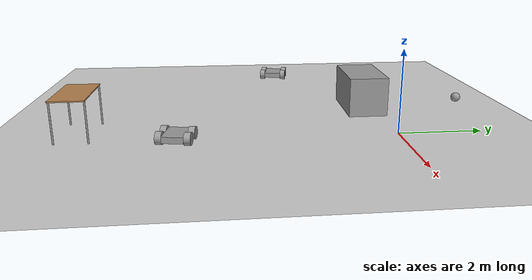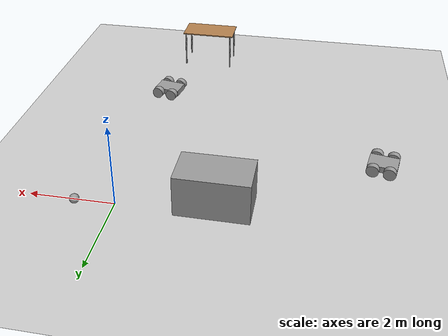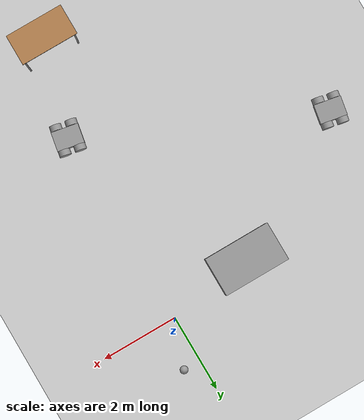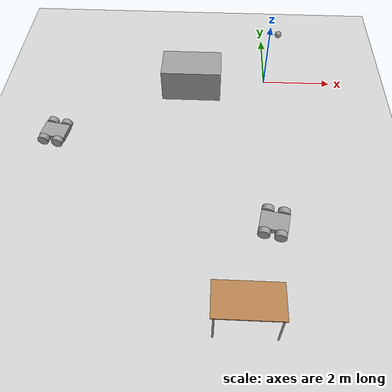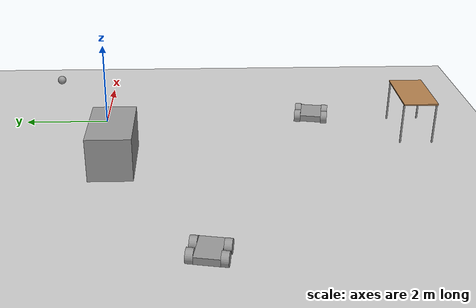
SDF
<sdf version="1.6">
 <world name="default">
  <model name="ground_plane">
   <static>1</static>
   <link name="link">
    <collision name="collision">
     <geometry><plane><normal>0 0 1</normal><size>100 100</size></plane></geometry>
     <surface><friction><ode><mu>100</mu><mu2>50</mu2></ode></friction></surface>
    </collision>
    <visual name="visual">
     <cast_shadows>0</cast_shadows>
     <geometry><plane><normal>0 0 1</normal><size>100 100</size></plane></geometry>
     <material>
      <script><uri>file://media/materials/scripts/gazebo.material</uri><name>Gazebo/Grey</name></script>
     </material>
    </visual>
   </link>
  </model>
  <model name="myrobo">
   <link name="link_0">
    <inertial>
     <mass>0.204659</mass>
     <inertia>
      <ixx>0.00778532</ixx>
      <ixy>0</ixy>
      <ixz>0</ixz>
      <iyy>0.0192244</iyy>
      <iyz>0</iyz>
      <izz>0.0226707</izz>
     </inertia>
    </inertial>
    <visual name="visual">
     <geometry><box><size>0.7 0.5 0.15</size></box></geometry>
     <material>
      <lighting>1</lighting>
      <script><uri>file://media/materials/scripts/gazebo.material</uri><name>Gazebo/Grey</name></script>
      <shader type="pixel"><normal_map>__default__</normal_map></shader>
      <ambient>0.3 0.3 0.3 1</ambient>
      <diffuse>0.7 0.7 0.7 1</diffuse>
      <specular>0.01 0.01 0.01 1</specular>
      <emissive>0 0 0 1</emissive>
     </material>
    </visual>
    <collision name="collision">
     <geometry><box><size>0.7 0.5 0.15</size></box></geometry>
     <surface>
      <friction>
       <ode><mu>1</mu><mu2>1</mu2><fdir1>0 0 0</fdir1><slip1>0</slip1><slip2>0</slip2></ode>
       <torsional>
        <coefficient>1</coefficient>
        <patch_radius>0</patch_radius>
        <surface_radius>0</surface_radius>
        <use_patch_radius>1</use_patch_radius>
        <ode><slip>0</slip></ode>
       </torsional>
      </friction>
      <bounce><restitution_coefficient>0</restitution_coefficient><threshold>1e+06</threshold></bounce>
      <contact>
       <collide_without_contact>0</collide_without_contact>
       <collide_without_contact_bitmask>1</collide_without_contact_bitmask>
       <collide_bitmask>1</collide_bitmask>
       <ode>
        <soft_cfm>0</soft_cfm>
        <soft_erp>0.2</soft_erp>
        <kp>1e+13</kp>
        <kd>1</kd>
        <max_vel>0.01</max_vel>
        <min_depth>0</min_depth>
       </ode>
       <bullet>
        <split_impulse>1</split_impulse>
        <split_impulse_penetration_threshold>-0.01</split_impulse_penetration_threshold>
        <soft_cfm>0</soft_cfm>
        <soft_erp>0.2</soft_erp>
        <kp>1e+13</kp>
        <kd>1</kd>
       </bullet>
      </contact>
     </surface>
    </collision>
   </link>
   <link name="link_1">
    <pose>0.2 -0.325014 0 1.5707 -0 0</pose>
    <inertial>
     <mass>1</mass>
     <inertia><ixx>0.145833</ixx><ixy>0</ixy><ixz>0</ixz><iyy>0.145833</iyy><iyz>0</iyz><izz>0.125</izz></inertia>
    </inertial>
    <visual name="visual">
     <geometry><cylinder><radius>0.15</radius><length>0.15</length></cylinder></geometry>
     <material>
      <lighting>1</lighting>
      <script><uri>file://media/materials/scripts/gazebo.material</uri><name>Gazebo/Grey</name></script>
      <shader type="pixel"><normal_map>__default__</normal_map></shader>
      <ambient>0.3 0.3 0.3 1</ambient>
      <diffuse>0.7 0.7 0.7 1</diffuse>
      <specular>0.01 0.01 0.01 1</specular>
      <emissive>0 0 0 1</emissive>
     </material>
    </visual>
    <collision name="collision">
     <geometry><cylinder><radius>0.15</radius><length>0.15</length></cylinder></geometry>
     <surface>
      <friction>
       <ode><mu>1</mu><mu2>1</mu2><fdir1>0 0 0</fdir1><slip1>0</slip1><slip2>0</slip2></ode>
       <torsional>
        <coefficient>1</coefficient>
        <patch_radius>0</patch_radius>
        <surface_radius>0</surface_radius>
        <use_patch_radius>1</use_patch_radius>
        <ode><slip>0</slip></ode>
       </torsional>
      </friction>
      <bounce><restitution_coefficient>0</restitution_coefficient><threshold>1e+06</threshold></bounce>
      <contact>
       <collide_without_contact>0</collide_without_contact>
       <collide_without_contact_bitmask>1</collide_without_contact_bitmask>
       <collide_bitmask>1</collide_bitmask>
       <ode>
        <soft_cfm>0</soft_cfm>
        <soft_erp>0.2</soft_erp>
        <kp>1e+13</kp>
        <kd>1</kd>
        <max_vel>0.01</max_vel>
        <min_depth>0</min_depth>
       </ode>
       <bullet>
        <split_impulse>1</split_impulse>
        <split_impulse_penetration_threshold>-0.01</split_impulse_penetration_threshold>
        <soft_cfm>0</soft_cfm>
        <soft_erp>0.2</soft_erp>
        <kp>1e+13</kp>
        <kd>1</kd>
       </bullet>
      </contact>
     </surface>
    </collision>
   </link>
   <link name="link_1_clone">
    <pose>-0.2 -0.325014 0 1.5707 -0 0</pose>
    <inertial>
     <mass>1</mass>
     <inertia><ixx>0.145833</ixx><ixy>0</ixy><ixz>0</ixz><iyy>0.145833</iyy><iyz>0</iyz><izz>0.125</izz></inertia>
    </inertial>
    <visual name="visual">
     <geometry><cylinder><radius>0.15</radius><length>0.15</length></cylinder></geometry>
     <material>
      <lighting>1</lighting>
      <script><uri>file://media/materials/scripts/gazebo.material</uri><name>Gazebo/Grey</name></script>
      <shader type="pixel"><normal_map>__default__</normal_map></shader>
      <ambient>0.3 0.3 0.3 1</ambient>
      <diffuse>0.7 0.7 0.7 1</diffuse>
      <specular>0.01 0.01 0.01 1</specular>
      <emissive>0 0 0 1</emissive>
     </material>
    </visual>
    <collision name="collision">
     <geometry><cylinder><radius>0.15</radius><length>0.15</length></cylinder></geometry>
     <surface>
      <friction>
       <ode><mu>1</mu><mu2>1</mu2><fdir1>0 0 0</fdir1><slip1>0</slip1><slip2>0</slip2></ode>
       <torsional>
        <coefficient>1</coefficient>
        <patch_radius>0</patch_radius>
        <surface_radius>0</surface_radius>
        <use_patch_radius>1</use_patch_radius>
        <ode><slip>0</slip></ode>
       </torsional>
      </friction>
      <bounce><restitution_coefficient>0</restitution_coefficient><threshold>1e+06</threshold></bounce>
      <contact>
       <collide_without_contact>0</collide_without_contact>
       <collide_without_contact_bitmask>1</collide_without_contact_bitmask>
       <collide_bitmask>1</collide_bitmask>
       <ode>
        <soft_cfm>0</soft_cfm>
        <soft_erp>0.2</soft_erp>
        <kp>1e+13</kp>
        <kd>1</kd>
        <max_vel>0.01</max_vel>
        <min_depth>0</min_depth>
       </ode>
       <bullet>
        <split_impulse>1</split_impulse>
        <split_impulse_penetration_threshold>-0.01</split_impulse_penetration_threshold>
        <soft_cfm>0</soft_cfm>
        <soft_erp>0.2</soft_erp>
        <kp>1e+13</kp>
        <kd>1</kd>
       </bullet>
      </contact>
     </surface>
    </collision>
   </link>
   <link name="link_1_clone_0">
    <pose>-0.2 0.325014 0 1.5707 -0 0</pose>
    <inertial>
     <mass>1</mass>
     <inertia><ixx>0.145833</ixx><ixy>0</ixy><ixz>0</ixz><iyy>0.145833</iyy><iyz>0</iyz><izz>0.125</izz></inertia>
    </inertial>
    <visual name="visual">
     <geometry><cylinder><radius>0.15</radius><length>0.15</length></cylinder></geometry>
     <material>
      <lighting>1</lighting>
      <script><uri>file://media/materials/scripts/gazebo.material</uri><name>Gazebo/Grey</name></script>
      <shader type="pixel"><normal_map>__default__</normal_map></shader>
      <ambient>0.3 0.3 0.3 1</ambient>
      <diffuse>0.7 0.7 0.7 1</diffuse>
      <specular>0.01 0.01 0.01 1</specular>
      <emissive>0 0 0 1</emissive>
     </material>
    </visual>
    <collision name="collision">
     <geometry><cylinder><radius>0.15</radius><length>0.15</length></cylinder></geometry>
     <surface>
      <friction>
       <ode><mu>1</mu><mu2>1</mu2><fdir1>0 0 0</fdir1><slip1>0</slip1><slip2>0</slip2></ode>
       <torsional>
        <coefficient>1</coefficient>
        <patch_radius>0</patch_radius>
        <surface_radius>0</surface_radius>
        <use_patch_radius>1</use_patch_radius>
        <ode><slip>0</slip></ode>
       </torsional>
      </friction>
      <bounce><restitution_coefficient>0</restitution_coefficient><threshold>1e+06</threshold></bounce>
      <contact>
       <collide_without_contact>0</collide_without_contact>
       <collide_without_contact_bitmask>1</collide_without_contact_bitmask>
       <collide_bitmask>1</collide_bitmask>
       <ode>
        <soft_cfm>0</soft_cfm>
        <soft_erp>0.2</soft_erp>
        <kp>1e+13</kp>
        <kd>1</kd>
        <max_vel>0.01</max_vel>
        <min_depth>0</min_depth>
       </ode>
       <bullet>
        <split_impulse>1</split_impulse>
        <split_impulse_penetration_threshold>-0.01</split_impulse_penetration_threshold>
        <soft_cfm>0</soft_cfm>
        <soft_erp>0.2</soft_erp>
        <kp>1e+13</kp>
        <kd>1</kd>
       </bullet>
      </contact>
     </surface>
    </collision>
   </link>
   <link name="link_1_clone_1">
    <pose>0.2 0.325014 0 1.5707 -0 0</pose>
    <inertial>
     <mass>1</mass>
     <inertia><ixx>0.145833</ixx><ixy>0</ixy><ixz>0</ixz><iyy>0.145833</iyy><iyz>0</iyz><izz>0.125</izz></inertia>
    </inertial>
    <visual name="visual">
     <geometry><cylinder><radius>0.15</radius><length>0.15</length></cylinder></geometry>
     <material>
      <lighting>1</lighting>
      <script><uri>file://media/materials/scripts/gazebo.material</uri><name>Gazebo/Grey</name></script>
      <shader type="pixel"><normal_map>__default__</normal_map></shader>
      <ambient>0.3 0.3 0.3 1</ambient>
      <diffuse>0.7 0.7 0.7 1</diffuse>
      <specular>0.01 0.01 0.01 1</specular>
      <emissive>0 0 0 1</emissive>
     </material>
    </visual>
    <collision name="collision">
     <geometry><cylinder><radius>0.15</radius><length>0.15</length></cylinder></geometry>
     <surface>
      <friction>
       <ode><mu>1</mu><mu2>1</mu2><fdir1>0 0 0</fdir1><slip1>0</slip1><slip2>0</slip2></ode>
       <torsional>
        <coefficient>1</coefficient>
        <patch_radius>0</patch_radius>
        <surface_radius>0</surface_radius>
        <use_patch_radius>1</use_patch_radius>
        <ode><slip>0</slip></ode>
       </torsional>
      </friction>
      <bounce><restitution_coefficient>0</restitution_coefficient><threshold>1e+06</threshold></bounce>
      <contact>
       <collide_without_contact>0</collide_without_contact>
       <collide_without_contact_bitmask>1</collide_without_contact_bitmask>
       <collide_bitmask>1</collide_bitmask>
       <ode>
        <soft_cfm>0</soft_cfm>
        <soft_erp>0.2</soft_erp>
        <kp>1e+13</kp>
        <kd>1</kd>
        <max_vel>0.01</max_vel>
        <min_depth>0</min_depth>
       </ode>
       <bullet>
        <split_impulse>1</split_impulse>
        <split_impulse_penetration_threshold>-0.01</split_impulse_penetration_threshold>
        <soft_cfm>0</soft_cfm>
        <soft_erp>0.2</soft_erp>
        <kp>1e+13</kp>
        <kd>1</kd>
       </bullet>
      </contact>
     </surface>
    </collision>
   </link>
   <joint name="link_0_JOINT_1" type="revolute">
    <parent>link_0</parent>
    <child>link_1</child>
    <axis>
     <xyz>1 0 0</xyz>
     <use_parent_model_frame>0</use_parent_model_frame>
     <limit>
      <lower>-1.79769e+308</lower>
      <upper>1.79769e+308</upper>
      <effort>-1</effort>
      <velocity>-1</velocity>
     </limit>
     <dynamics>
      <spring_reference>0</spring_reference>
      <spring_stiffness>0</spring_stiffness>
      <damping>0</damping>
     </dynamics>
    </axis>
    <physics>
     <ode><limit><cfm>0</cfm><erp>0.2</erp></limit><suspension><cfm>0</cfm><erp>0.2</erp></suspension></ode>
    </physics>
   </joint>
   <joint name="link_0_JOINT_2" type="revolute">
    <parent>link_0</parent>
    <child>link_1_clone_1</child>
    <pose>0 0 0.3 0 -0 0</pose>
    <axis>
     <xyz>0 0 1</xyz>
     <use_parent_model_frame>0</use_parent_model_frame>
     <limit>
      <lower>-1.79769e+308</lower>
      <upper>1.79769e+308</upper>
      <effort>-1</effort>
      <velocity>-1</velocity>
     </limit>
     <dynamics>
      <spring_reference>0</spring_reference>
      <spring_stiffness>0</spring_stiffness>
      <damping>0</damping>
      <friction>0</friction>
     </dynamics>
    </axis>
    <physics>
     <ode><limit><cfm>0</cfm><erp>0.2</erp></limit><suspension><cfm>0</cfm><erp>0.2</erp></suspension></ode>
    </physics>
   </joint>
   <joint name="link_0_JOINT_3" type="revolute">
    <parent>link_0</parent>
    <child>link_1_clone</child>
    <axis>
     <xyz>1 0 0</xyz>
     <use_parent_model_frame>0</use_parent_model_frame>
     <limit>
      <lower>-1.79769e+308</lower>
      <upper>1.79769e+308</upper>
      <effort>-1</effort>
      <velocity>-1</velocity>
     </limit>
     <dynamics>
      <spring_reference>0</spring_reference>
      <spring_stiffness>0</spring_stiffness>
      <damping>0</damping>
     </dynamics>
    </axis>
    <physics>
     <ode><limit><cfm>0</cfm><erp>0.2</erp></limit><suspension><cfm>0</cfm><erp>0.2</erp></suspension></ode>
    </physics>
   </joint>
   <joint name="link_0_JOINT_4" type="revolute">
    <parent>link_0</parent>
    <child>link_1_clone_0</child>
    <axis>
     <xyz>1 0 0</xyz>
     <use_parent_model_frame>0</use_parent_model_frame>
     <limit>
      <lower>-1.79769e+308</lower>
      <upper>1.79769e+308</upper>
      <effort>-1</effort>
      <velocity>-1</velocity>
     </limit>
     <dynamics>
      <spring_reference>0</spring_reference>
      <spring_stiffness>0</spring_stiffness>
      <damping>0</damping>
     </dynamics>
    </axis>
    <physics>
     <ode><limit><cfm>0</cfm><erp>0.2</erp></limit><suspension><cfm>0</cfm><erp>0.2</erp></suspension></ode>
    </physics>
   </joint>
   <static>0</static>
   <pose>0.026232 -5.13325 0.149999 4e-06 -4e-06 -0.18179</pose>
  </model>
  <model name="myrobo_0">
   <link name="link_0">
    <inertial>
     <mass>0.204659</mass>
     <inertia>
      <ixx>0.00778532</ixx>
      <ixy>0</ixy>
      <ixz>0</ixz>
      <iyy>0.0192244</iyy>
      <iyz>0</iyz>
      <izz>0.0226707</izz>
     </inertia>
    </inertial>
    <visual name="visual">
     <geometry><box><size>0.7 0.5 0.15</size></box></geometry>
     <material>
      <lighting>1</lighting>
      <script><uri>file://media/materials/scripts/gazebo.material</uri><name>Gazebo/Grey</name></script>
      <shader type="pixel"><normal_map>__default__</normal_map></shader>
      <ambient>0.3 0.3 0.3 1</ambient>
      <diffuse>0.7 0.7 0.7 1</diffuse>
      <specular>0.01 0.01 0.01 1</specular>
      <emissive>0 0 0 1</emissive>
     </material>
    </visual>
    <collision name="collision">
     <geometry><box><size>0.7 0.5 0.15</size></box></geometry>
     <surface>
      <friction>
       <ode><mu>1</mu><mu2>1</mu2><fdir1>0 0 0</fdir1><slip1>0</slip1><slip2>0</slip2></ode>
       <torsional>
        <coefficient>1</coefficient>
        <patch_radius>0</patch_radius>
        <surface_radius>0</surface_radius>
        <use_patch_radius>1</use_patch_radius>
        <ode><slip>0</slip></ode>
       </torsional>
      </friction>
      <bounce><restitution_coefficient>0</restitution_coefficient><threshold>1e+06</threshold></bounce>
      <contact>
       <collide_without_contact>0</collide_without_contact>
       <collide_without_contact_bitmask>1</collide_without_contact_bitmask>
       <collide_bitmask>1</collide_bitmask>
       <ode>
        <soft_cfm>0</soft_cfm>
        <soft_erp>0.2</soft_erp>
        <kp>1e+13</kp>
        <kd>1</kd>
        <max_vel>0.01</max_vel>
        <min_depth>0</min_depth>
       </ode>
       <bullet>
        <split_impulse>1</split_impulse>
        <split_impulse_penetration_threshold>-0.01</split_impulse_penetration_threshold>
        <soft_cfm>0</soft_cfm>
        <soft_erp>0.2</soft_erp>
        <kp>1e+13</kp>
        <kd>1</kd>
       </bullet>
      </contact>
     </surface>
    </collision>
   </link>
   <link name="link_1">
    <pose>0.2 -0.325014 0 1.5707 -0 0</pose>
    <inertial>
     <mass>1</mass>
     <inertia><ixx>0.145833</ixx><ixy>0</ixy><ixz>0</ixz><iyy>0.145833</iyy><iyz>0</iyz><izz>0.125</izz></inertia>
    </inertial>
    <visual name="visual">
     <geometry><cylinder><radius>0.15</radius><length>0.15</length></cylinder></geometry>
     <material>
      <lighting>1</lighting>
      <script><uri>file://media/materials/scripts/gazebo.material</uri><name>Gazebo/Grey</name></script>
      <shader type="pixel"><normal_map>__default__</normal_map></shader>
      <ambient>0.3 0.3 0.3 1</ambient>
      <diffuse>0.7 0.7 0.7 1</diffuse>
      <specular>0.01 0.01 0.01 1</specular>
      <emissive>0 0 0 1</emissive>
     </material>
    </visual>
    <collision name="collision">
     <geometry><cylinder><radius>0.15</radius><length>0.15</length></cylinder></geometry>
     <surface>
      <friction>
       <ode><mu>1</mu><mu2>1</mu2><fdir1>0 0 0</fdir1><slip1>0</slip1><slip2>0</slip2></ode>
       <torsional>
        <coefficient>1</coefficient>
        <patch_radius>0</patch_radius>
        <surface_radius>0</surface_radius>
        <use_patch_radius>1</use_patch_radius>
        <ode><slip>0</slip></ode>
       </torsional>
      </friction>
      <bounce><restitution_coefficient>0</restitution_coefficient><threshold>1e+06</threshold></bounce>
      <contact>
       <collide_without_contact>0</collide_without_contact>
       <collide_without_contact_bitmask>1</collide_without_contact_bitmask>
       <collide_bitmask>1</collide_bitmask>
       <ode>
        <soft_cfm>0</soft_cfm>
        <soft_erp>0.2</soft_erp>
        <kp>1e+13</kp>
        <kd>1</kd>
        <max_vel>0.01</max_vel>
        <min_depth>0</min_depth>
       </ode>
       <bullet>
        <split_impulse>1</split_impulse>
        <split_impulse_penetration_threshold>-0.01</split_impulse_penetration_threshold>
        <soft_cfm>0</soft_cfm>
        <soft_erp>0.2</soft_erp>
        <kp>1e+13</kp>
        <kd>1</kd>
       </bullet>
      </contact>
     </surface>
    </collision>
   </link>
   <link name="link_1_clone">
    <pose>-0.2 -0.325014 0 1.5707 -0 0</pose>
    <inertial>
     <mass>1</mass>
     <inertia><ixx>0.145833</ixx><ixy>0</ixy><ixz>0</ixz><iyy>0.145833</iyy><iyz>0</iyz><izz>0.125</izz></inertia>
    </inertial>
    <visual name="visual">
     <geometry><cylinder><radius>0.15</radius><length>0.15</length></cylinder></geometry>
     <material>
      <lighting>1</lighting>
      <script><uri>file://media/materials/scripts/gazebo.material</uri><name>Gazebo/Grey</name></script>
      <shader type="pixel"><normal_map>__default__</normal_map></shader>
      <ambient>0.3 0.3 0.3 1</ambient>
      <diffuse>0.7 0.7 0.7 1</diffuse>
      <specular>0.01 0.01 0.01 1</specular>
      <emissive>0 0 0 1</emissive>
     </material>
    </visual>
    <collision name="collision">
     <geometry><cylinder><radius>0.15</radius><length>0.15</length></cylinder></geometry>
     <surface>
      <friction>
       <ode><mu>1</mu><mu2>1</mu2><fdir1>0 0 0</fdir1><slip1>0</slip1><slip2>0</slip2></ode>
       <torsional>
        <coefficient>1</coefficient>
        <patch_radius>0</patch_radius>
        <surface_radius>0</surface_radius>
        <use_patch_radius>1</use_patch_radius>
        <ode><slip>0</slip></ode>
       </torsional>
      </friction>
      <bounce><restitution_coefficient>0</restitution_coefficient><threshold>1e+06</threshold></bounce>
      <contact>
       <collide_without_contact>0</collide_without_contact>
       <collide_without_contact_bitmask>1</collide_without_contact_bitmask>
       <collide_bitmask>1</collide_bitmask>
       <ode>
        <soft_cfm>0</soft_cfm>
        <soft_erp>0.2</soft_erp>
        <kp>1e+13</kp>
        <kd>1</kd>
        <max_vel>0.01</max_vel>
        <min_depth>0</min_depth>
       </ode>
       <bullet>
        <split_impulse>1</split_impulse>
        <split_impulse_penetration_threshold>-0.01</split_impulse_penetration_threshold>
        <soft_cfm>0</soft_cfm>
        <soft_erp>0.2</soft_erp>
        <kp>1e+13</kp>
        <kd>1</kd>
       </bullet>
      </contact>
     </surface>
    </collision>
   </link>
   <link name="link_1_clone_0">
    <pose>-0.2 0.325014 0 1.5707 -0 0</pose>
    <inertial>
     <mass>1</mass>
     <inertia><ixx>0.145833</ixx><ixy>0</ixy><ixz>0</ixz><iyy>0.145833</iyy><iyz>0</iyz><izz>0.125</izz></inertia>
    </inertial>
    <visual name="visual">
     <geometry><cylinder><radius>0.15</radius><length>0.15</length></cylinder></geometry>
     <material>
      <lighting>1</lighting>
      <script><uri>file://media/materials/scripts/gazebo.material</uri><name>Gazebo/Grey</name></script>
      <shader type="pixel"><normal_map>__default__</normal_map></shader>
      <ambient>0.3 0.3 0.3 1</ambient>
      <diffuse>0.7 0.7 0.7 1</diffuse>
      <specular>0.01 0.01 0.01 1</specular>
      <emissive>0 0 0 1</emissive>
     </material>
    </visual>
    <collision name="collision">
     <geometry><cylinder><radius>0.15</radius><length>0.15</length></cylinder></geometry>
     <surface>
      <friction>
       <ode><mu>1</mu><mu2>1</mu2><fdir1>0 0 0</fdir1><slip1>0</slip1><slip2>0</slip2></ode>
       <torsional>
        <coefficient>1</coefficient>
        <patch_radius>0</patch_radius>
        <surface_radius>0</surface_radius>
        <use_patch_radius>1</use_patch_radius>
        <ode><slip>0</slip></ode>
       </torsional>
      </friction>
      <bounce><restitution_coefficient>0</restitution_coefficient><threshold>1e+06</threshold></bounce>
      <contact>
       <collide_without_contact>0</collide_without_contact>
       <collide_without_contact_bitmask>1</collide_without_contact_bitmask>
       <collide_bitmask>1</collide_bitmask>
       <ode>
        <soft_cfm>0</soft_cfm>
        <soft_erp>0.2</soft_erp>
        <kp>1e+13</kp>
        <kd>1</kd>
        <max_vel>0.01</max_vel>
        <min_depth>0</min_depth>
       </ode>
       <bullet>
        <split_impulse>1</split_impulse>
        <split_impulse_penetration_threshold>-0.01</split_impulse_penetration_threshold>
        <soft_cfm>0</soft_cfm>
        <soft_erp>0.2</soft_erp>
        <kp>1e+13</kp>
        <kd>1</kd>
       </bullet>
      </contact>
     </surface>
    </collision>
   </link>
   <link name="link_1_clone_1">
    <pose>0.2 0.325014 0 1.5707 -0 0</pose>
    <inertial>
     <mass>1</mass>
     <inertia><ixx>0.145833</ixx><ixy>0</ixy><ixz>0</ixz><iyy>0.145833</iyy><iyz>0</iyz><izz>0.125</izz></inertia>
    </inertial>
    <visual name="visual">
     <geometry><cylinder><radius>0.15</radius><length>0.15</length></cylinder></geometry>
     <material>
      <lighting>1</lighting>
      <script><uri>file://media/materials/scripts/gazebo.material</uri><name>Gazebo/Grey</name></script>
      <shader type="pixel"><normal_map>__default__</normal_map></shader>
      <ambient>0.3 0.3 0.3 1</ambient>
      <diffuse>0.7 0.7 0.7 1</diffuse>
      <specular>0.01 0.01 0.01 1</specular>
      <emissive>0 0 0 1</emissive>
     </material>
    </visual>
    <collision name="collision">
     <geometry><cylinder><radius>0.15</radius><length>0.15</length></cylinder></geometry>
     <surface>
      <friction>
       <ode><mu>1</mu><mu2>1</mu2><fdir1>0 0 0</fdir1><slip1>0</slip1><slip2>0</slip2></ode>
       <torsional>
        <coefficient>1</coefficient>
        <patch_radius>0</patch_radius>
        <surface_radius>0</surface_radius>
        <use_patch_radius>1</use_patch_radius>
        <ode><slip>0</slip></ode>
       </torsional>
      </friction>
      <bounce><restitution_coefficient>0</restitution_coefficient><threshold>1e+06</threshold></bounce>
      <contact>
       <collide_without_contact>0</collide_without_contact>
       <collide_without_contact_bitmask>1</collide_without_contact_bitmask>
       <collide_bitmask>1</collide_bitmask>
       <ode>
        <soft_cfm>0</soft_cfm>
        <soft_erp>0.2</soft_erp>
        <kp>1e+13</kp>
        <kd>1</kd>
        <max_vel>0.01</max_vel>
        <min_depth>0</min_depth>
       </ode>
       <bullet>
        <split_impulse>1</split_impulse>
        <split_impulse_penetration_threshold>-0.01</split_impulse_penetration_threshold>
        <soft_cfm>0</soft_cfm>
        <soft_erp>0.2</soft_erp>
        <kp>1e+13</kp>
        <kd>1</kd>
       </bullet>
      </contact>
     </surface>
    </collision>
   </link>
   <joint name="link_0_JOINT_1" type="revolute">
    <parent>link_0</parent>
    <child>link_1</child>
    <axis>
     <xyz>1 0 0</xyz>
     <use_parent_model_frame>0</use_parent_model_frame>
     <limit>
      <lower>-1.79769e+308</lower>
      <upper>1.79769e+308</upper>
      <effort>-1</effort>
      <velocity>-1</velocity>
     </limit>
     <dynamics>
      <spring_reference>0</spring_reference>
      <spring_stiffness>0</spring_stiffness>
      <damping>0</damping>
     </dynamics>
    </axis>
    <physics>
     <ode><limit><cfm>0</cfm><erp>0.2</erp></limit><suspension><cfm>0</cfm><erp>0.2</erp></suspension></ode>
    </physics>
   </joint>
   <joint name="link_0_JOINT_2" type="revolute">
    <parent>link_0</parent>
    <child>link_1_clone_1</child>
    <pose>0 0 0.3 0 -0 0</pose>
    <axis>
     <xyz>0 0 1</xyz>
     <use_parent_model_frame>0</use_parent_model_frame>
     <limit>
      <lower>-1.79769e+308</lower>
      <upper>1.79769e+308</upper>
      <effort>-1</effort>
      <velocity>-1</velocity>
     </limit>
     <dynamics>
      <spring_reference>0</spring_reference>
      <spring_stiffness>0</spring_stiffness>
      <damping>0</damping>
      <friction>0</friction>
     </dynamics>
    </axis>
    <physics>
     <ode><limit><cfm>0</cfm><erp>0.2</erp></limit><suspension><cfm>0</cfm><erp>0.2</erp></suspension></ode>
    </physics>
   </joint>
   <joint name="link_0_JOINT_3" type="revolute">
    <parent>link_0</parent>
    <child>link_1_clone</child>
    <axis>
     <xyz>1 0 0</xyz>
     <use_parent_model_frame>0</use_parent_model_frame>
     <limit>
      <lower>-1.79769e+308</lower>
      <upper>1.79769e+308</upper>
      <effort>-1</effort>
      <velocity>-1</velocity>
     </limit>
     <dynamics>
      <spring_reference>0</spring_reference>
      <spring_stiffness>0</spring_stiffness>
      <damping>0</damping>
     </dynamics>
    </axis>
    <physics>
     <ode><limit><cfm>0</cfm><erp>0.2</erp></limit><suspension><cfm>0</cfm><erp>0.2</erp></suspension></ode>
    </physics>
   </joint>
   <joint name="link_0_JOINT_4" type="revolute">
    <parent>link_0</parent>
    <child>link_1_clone_0</child>
    <axis>
     <xyz>1 0 0</xyz>
     <use_parent_model_frame>0</use_parent_model_frame>
     <limit>
      <lower>-1.79769e+308</lower>
      <upper>1.79769e+308</upper>
      <effort>-1</effort>
      <velocity>-1</velocity>
     </limit>
     <dynamics>
      <spring_reference>0</spring_reference>
      <spring_stiffness>0</spring_stiffness>
      <damping>0</damping>
     </dynamics>
    </axis>
    <physics>
     <ode><limit><cfm>0</cfm><erp>0.2</erp></limit><suspension><cfm>0</cfm><erp>0.2</erp></suspension></ode>
    </physics>
   </joint>
   <static>0</static>
   <pose>-5.87225 -2.44596 0.15 1e-05 -1e-05 -0.180553</pose>
  </model>
  <model name="table">
   <static>1</static>
   <link name="link">
    <collision name="surface">
     <pose>0 0 1 0 -0 0</pose>
     <geometry><box><size>1.5 0.8 0.03</size></box></geometry>
     <surface><friction><ode><mu>0.6</mu><mu2>0.6</mu2></ode></friction></surface>
    </collision>
    <visual name="visual1">
     <pose>0 0 1 0 -0 0</pose>
     <geometry><box><size>1.5 0.8 0.03</size></box></geometry>
     <material>
      <script><uri>file://media/materials/scripts/gazebo.material</uri><name>Gazebo/Wood</name></script>
     </material>
    </visual>
    <collision name="front_left_leg">
     <pose>0.68 0.38 0.5 0 -0 0</pose>
     <geometry><cylinder><radius>0.02</radius><length>1</length></cylinder></geometry>
    </collision>
    <visual name="front_left_leg">
     <pose>0.68 0.38 0.5 0 -0 0</pose>
     <geometry><cylinder><radius>0.02</radius><length>1</length></cylinder></geometry>
     <material>
      <script><uri>file://media/materials/scripts/gazebo.material</uri><name>Gazebo/Grey</name></script>
     </material>
    </visual>
    <collision name="front_right_leg">
     <pose>0.68 -0.38 0.5 0 -0 0</pose>
     <geometry><cylinder><radius>0.02</radius><length>1</length></cylinder></geometry>
    </collision>
    <visual name="front_right_leg">
     <pose>0.68 -0.38 0.5 0 -0 0</pose>
     <geometry><cylinder><radius>0.02</radius><length>1</length></cylinder></geometry>
     <material>
      <script><uri>file://media/materials/scripts/gazebo.material</uri><name>Gazebo/Grey</name></script>
     </material>
    </visual>
    <collision name="back_right_leg">
     <pose>-0.68 -0.38 0.5 0 -0 0</pose>
     <geometry><cylinder><radius>0.02</radius><length>1</length></cylinder></geometry>
    </collision>
    <visual name="back_right_leg">
     <pose>-0.68 -0.38 0.5 0 -0 0</pose>
     <geometry><cylinder><radius>0.02</radius><length>1</length></cylinder></geometry>
     <material>
      <script><uri>file://media/materials/scripts/gazebo.material</uri><name>Gazebo/Grey</name></script>
     </material>
    </visual>
    <collision name="back_left_leg">
     <pose>-0.68 0.38 0.5 0 -0 0</pose>
     <geometry><cylinder><radius>0.02</radius><length>1</length></cylinder></geometry>
    </collision>
    <visual name="back_left_leg">
     <pose>-0.68 0.38 0.5 0 -0 0</pose>
     <geometry><cylinder><radius>0.02</radius><length>1</length></cylinder></geometry>
     <material>
      <script><uri>file://media/materials/scripts/gazebo.material</uri><name>Gazebo/Grey</name></script>
     </material>
    </visual>
   </link>
   <pose>-0.703778 -7.44864 0 0 -0 0</pose>
  </model>
  <model name="Untitled">
   <link name="link_0">
    <inertial>
     <mass>1</mass>
     <inertia><ixx>0.1</ixx><ixy>0</ixy><ixz>0</ixz><iyy>0.1</iyy><iyz>0</iyz><izz>0.1</izz></inertia>
    </inertial>
    <visual name="visual">
     <geometry><sphere><radius>0.1</radius></sphere></geometry>
     <material>
      <lighting>1</lighting>
      <script><uri>file://media/materials/scripts/gazebo.material</uri><name>Gazebo/Grey</name></script>
      <shader type="pixel"><normal_map>__default__</normal_map></shader>
      <ambient>1 1 1 1</ambient>
      <diffuse>1 1 1 1</diffuse>
      <specular>1 1 1 1</specular>
      <emissive>1 1 1 1</emissive>
     </material>
    </visual>
    <collision name="collision">
     <geometry><sphere><radius>0.1</radius></sphere></geometry>
     <surface>
      <friction>
       <ode><mu>1</mu><mu2>1</mu2><fdir1>0 0 0</fdir1><slip1>0</slip1><slip2>0</slip2></ode>
       <torsional>
        <coefficient>1</coefficient>
        <patch_radius>0</patch_radius>
        <surface_radius>0</surface_radius>
        <use_patch_radius>1</use_patch_radius>
        <ode><slip>0</slip></ode>
       </torsional>
      </friction>
      <bounce><restitution_coefficient>0</restitution_coefficient><threshold>1e+06</threshold></bounce>
      <contact>
       <collide_without_contact>0</collide_without_contact>
       <collide_without_contact_bitmask>1</collide_without_contact_bitmask>
       <collide_bitmask>1</collide_bitmask>
       <ode>
        <soft_cfm>0</soft_cfm>
        <soft_erp>0.2</soft_erp>
        <kp>1e+13</kp>
        <kd>1</kd>
        <max_vel>0.01</max_vel>
        <min_depth>0</min_depth>
       </ode>
       <bullet>
        <split_impulse>1</split_impulse>
        <split_impulse_penetration_threshold>-0.01</split_impulse_penetration_threshold>
        <soft_cfm>0</soft_cfm>
        <soft_erp>0.2</soft_erp>
        <kp>1e+13</kp>
        <kd>1</kd>
       </bullet>
      </contact>
     </surface>
    </collision>
   </link>
   <static>0</static>
   <pose>0.400622 1.11274 0.973268 0 -0 0</pose>
  </model>
  <model name="unit_box">
   <pose>-2.19199 -0.367336 0.5 0 -0 0</pose>
   <link name="link">
    <inertial>
     <mass>1</mass>
     <inertia>
      <ixx>0.166667</ixx>
      <ixy>0</ixy>
      <ixz>0</ixz>
      <iyy>0.166667</iyy>
      <iyz>0</iyz>
      <izz>0.166667</izz>
     </inertia>
    </inertial>
    <collision name="collision"><geometry><box><size>1.70709 1 1</size></box></geometry></collision>
    <visual name="visual">
     <geometry><box><size>1.70709 1 1</size></box></geometry>
     <material>
      <script><name>Gazebo/Grey</name><uri>file://media/materials/scripts/gazebo.material</uri></script>
     </material>
    </visual>
   </link>
  </model>
 </world>
</sdf>
